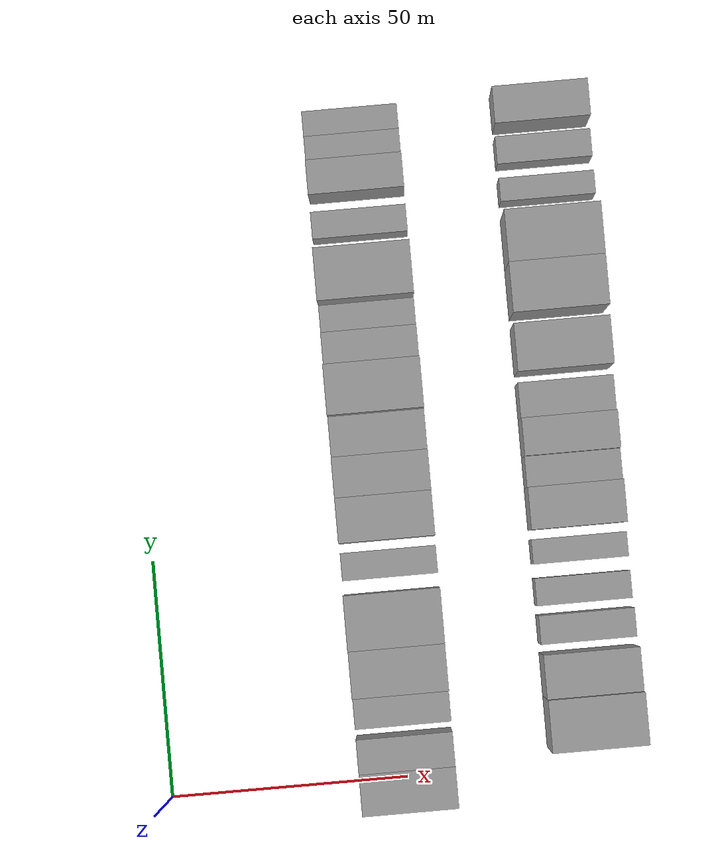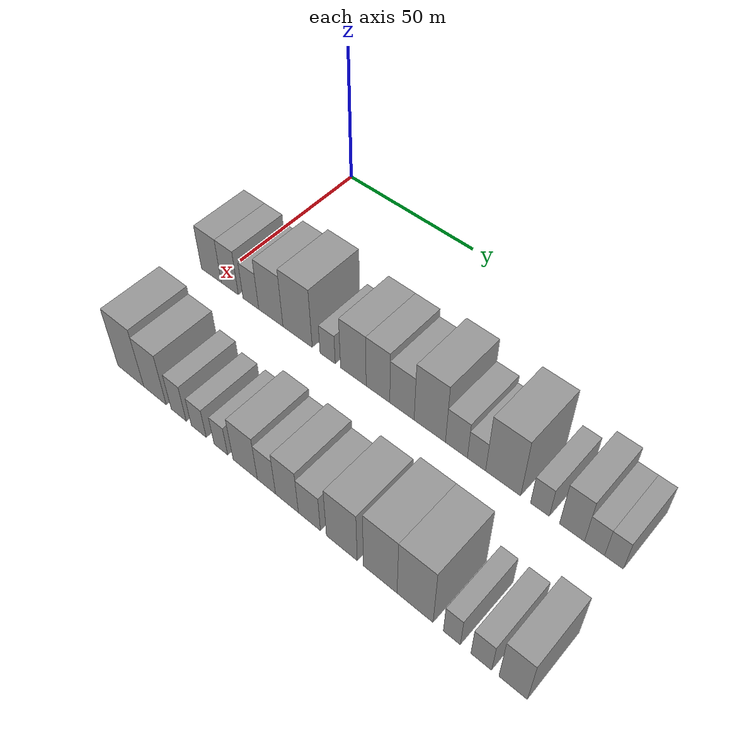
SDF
<sdf version="1.6">
 <world name="default">
  <model name="building_33">
   <static>1</static>
   <pose>50.0000 -1.9753 0 0.000000 0.000000 0.000000</pose>
   <link name="link">
    <pose>0 0 9.00 0 0 0</pose>
    <collision name="collision"><geometry><box><size>20.0000 8.6439 18.0000</size></box></geometry></collision>
    <visual name="visual">
     <cast_shadows>0</cast_shadows>
     <geometry><box><size>20.0000 8.6439 18.0000</size></box></geometry>
     <material>
      <script>
       <uri>model://grey_wall/materials/scripts</uri>
       <uri>model://grey_wall/materials/textures</uri>
       <name>vrc/grey_wall</name>
      </script>
     </material>
    </visual>
   </link>
  </model>
  <model name="building_34">
   <static>1</static>
   <pose>50.0000 5.9675 0 0.000000 0.000000 0.000000</pose>
   <link name="link">
    <pose>0 0 9.00 0 0 0</pose>
    <collision name="collision"><geometry><box><size>20.0000 7.2417 18.0000</size></box></geometry></collision>
    <visual name="visual">
     <cast_shadows>0</cast_shadows>
     <geometry><box><size>20.0000 7.2417 18.0000</size></box></geometry>
     <material>
      <script>
       <uri>model://grey_wall/materials/scripts</uri>
       <uri>model://grey_wall/materials/textures</uri>
       <name>vrc/grey_wall</name>
      </script>
     </material>
    </visual>
   </link>
  </model>
  <model name="building_35">
   <static>1</static>
   <pose>50.0000 14.8578 0 0.000000 0.000000 0.000000</pose>
   <link name="link">
    <pose>0 0 7.50 0 0 0</pose>
    <collision name="collision"><geometry><box><size>20.0000 6.5390 15.0000</size></box></geometry></collision>
    <visual name="visual">
     <cast_shadows>0</cast_shadows>
     <geometry><box><size>20.0000 6.5390 15.0000</size></box></geometry>
     <material>
      <script>
       <uri>model://grey_wall/materials/scripts</uri>
       <uri>model://grey_wall/materials/textures</uri>
       <name>vrc/grey_wall</name>
      </script>
     </material>
    </visual>
   </link>
  </model>
  <model name="building_36">
   <static>1</static>
   <pose>50.0000 23.0570 0 0.000000 0.000000 0.000000</pose>
   <link name="link">
    <pose>0 0 10.50 0 0 0</pose>
    <collision name="collision"><geometry><box><size>20.0000 9.8593 21.0000</size></box></geometry></collision>
    <visual name="visual">
     <cast_shadows>0</cast_shadows>
     <geometry><box><size>20.0000 9.8593 21.0000</size></box></geometry>
     <material>
      <script>
       <uri>model://grey_wall/materials/scripts</uri>
       <uri>model://grey_wall/materials/textures</uri>
       <name>vrc/grey_wall</name>
      </script>
     </material>
    </visual>
   </link>
  </model>
  <model name="building_37">
   <static>1</static>
   <pose>50.0000 33.7391 0 0.000000 0.000000 0.000000</pose>
   <link name="link">
    <pose>0 0 12.00 0 0 0</pose>
    <collision name="collision"><geometry><box><size>20.0000 11.5049 24.0000</size></box></geometry></collision>
    <visual name="visual">
     <cast_shadows>0</cast_shadows>
     <geometry><box><size>20.0000 11.5049 24.0000</size></box></geometry>
     <material>
      <script>
       <uri>model://grey_wall/materials/scripts</uri>
       <uri>model://grey_wall/materials/textures</uri>
       <name>vrc/grey_wall</name>
      </script>
     </material>
    </visual>
   </link>
  </model>
  <model name="building_38">
   <static>1</static>
   <pose>50.0000 45.3837 0 0.000000 0.000000 0.000000</pose>
   <link name="link">
    <pose>0 0 6.00 0 0 0</pose>
    <collision name="collision"><geometry><box><size>20.0000 5.7844 12.0000</size></box></geometry></collision>
    <visual name="visual">
     <cast_shadows>0</cast_shadows>
     <geometry><box><size>20.0000 5.7844 12.0000</size></box></geometry>
     <material>
      <script>
       <uri>model://grey_wall/materials/scripts</uri>
       <uri>model://grey_wall/materials/textures</uri>
       <name>vrc/grey_wall</name>
      </script>
     </material>
    </visual>
   </link>
  </model>
  <model name="building_39">
   <static>1</static>
   <pose>50.0000 54.9895 0 0.000000 0.000000 0.000000</pose>
   <link name="link">
    <pose>0 0 10.50 0 0 0</pose>
    <collision name="collision"><geometry><box><size>20.0000 9.4272 21.0000</size></box></geometry></collision>
    <visual name="visual">
     <cast_shadows>0</cast_shadows>
     <geometry><box><size>20.0000 9.4272 21.0000</size></box></geometry>
     <material>
      <script>
       <uri>model://grey_wall/materials/scripts</uri>
       <uri>model://grey_wall/materials/textures</uri>
       <name>vrc/grey_wall</name>
      </script>
     </material>
    </visual>
   </link>
  </model>
  <model name="building_40">
   <static>1</static>
   <pose>50.0000 63.9344 0 0.000000 0.000000 0.000000</pose>
   <link name="link">
    <pose>0 0 10.50 0 0 0</pose>
    <collision name="collision"><geometry><box><size>20.0000 8.4624 21.0000</size></box></geometry></collision>
    <visual name="visual">
     <cast_shadows>0</cast_shadows>
     <geometry><box><size>20.0000 8.4624 21.0000</size></box></geometry>
     <material>
      <script>
       <uri>model://grey_wall/materials/scripts</uri>
       <uri>model://grey_wall/materials/textures</uri>
       <name>vrc/grey_wall</name>
      </script>
     </material>
    </visual>
   </link>
  </model>
  <model name="building_41">
   <static>1</static>
   <pose>50.0000 72.4222 0 0.000000 0.000000 0.000000</pose>
   <link name="link">
    <pose>0 0 9.00 0 0 0</pose>
    <collision name="collision"><geometry><box><size>20.0000 8.5133 18.0000</size></box></geometry></collision>
    <visual name="visual">
     <cast_shadows>0</cast_shadows>
     <geometry><box><size>20.0000 8.5133 18.0000</size></box></geometry>
     <material>
      <script>
       <uri>model://grey_wall/materials/scripts</uri>
       <uri>model://grey_wall/materials/textures</uri>
       <name>vrc/grey_wall</name>
      </script>
     </material>
    </visual>
   </link>
  </model>
  <model name="building_42">
   <static>1</static>
   <pose>50.0000 81.9835 0 0.000000 0.000000 0.000000</pose>
   <link name="link">
    <pose>0 0 12.00 0 0 0</pose>
    <collision name="collision"><geometry><box><size>20.0000 10.6092 24.0000</size></box></geometry></collision>
    <visual name="visual">
     <cast_shadows>0</cast_shadows>
     <geometry><box><size>20.0000 10.6092 24.0000</size></box></geometry>
     <material>
      <script>
       <uri>model://grey_wall/materials/scripts</uri>
       <uri>model://grey_wall/materials/textures</uri>
       <name>vrc/grey_wall</name>
      </script>
     </material>
    </visual>
   </link>
  </model>
  <model name="building_43">
   <static>1</static>
   <pose>50.0000 90.8949 0 0.000000 0.000000 0.000000</pose>
   <link name="link">
    <pose>0 0 7.50 0 0 0</pose>
    <collision name="collision"><geometry><box><size>20.0000 7.2136 15.0000</size></box></geometry></collision>
    <visual name="visual">
     <cast_shadows>0</cast_shadows>
     <geometry><box><size>20.0000 7.2136 15.0000</size></box></geometry>
     <material>
      <script>
       <uri>model://grey_wall/materials/scripts</uri>
       <uri>model://grey_wall/materials/textures</uri>
       <name>vrc/grey_wall</name>
      </script>
     </material>
    </visual>
   </link>
  </model>
  <model name="building_44">
   <static>1</static>
   <pose>50.0000 97.4347 0 0.000000 0.000000 0.000000</pose>
   <link name="link">
    <pose>0 0 6.00 0 0 0</pose>
    <collision name="collision"><geometry><box><size>20.0000 5.8660 12.0000</size></box></geometry></collision>
    <visual name="visual">
     <cast_shadows>0</cast_shadows>
     <geometry><box><size>20.0000 5.8660 12.0000</size></box></geometry>
     <material>
      <script>
       <uri>model://grey_wall/materials/scripts</uri>
       <uri>model://grey_wall/materials/textures</uri>
       <name>vrc/grey_wall</name>
      </script>
     </material>
    </visual>
   </link>
  </model>
  <model name="building_45">
   <static>1</static>
   <pose>50.0000 105.8738 0 0.000000 0.000000 0.000000</pose>
   <link name="link">
    <pose>0 0 12.00 0 0 0</pose>
    <collision name="collision"><geometry><box><size>20.0000 11.0121 24.0000</size></box></geometry></collision>
    <visual name="visual">
     <cast_shadows>0</cast_shadows>
     <geometry><box><size>20.0000 11.0121 24.0000</size></box></geometry>
     <material>
      <script>
       <uri>model://grey_wall/materials/scripts</uri>
       <uri>model://grey_wall/materials/textures</uri>
       <name>vrc/grey_wall</name>
      </script>
     </material>
    </visual>
   </link>
  </model>
  <model name="building_46">
   <static>1</static>
   <pose>50.0000 117.2272 0 0.000000 0.000000 0.000000</pose>
   <link name="link">
    <pose>0 0 6.00 0 0 0</pose>
    <collision name="collision"><geometry><box><size>20.0000 5.6948 12.0000</size></box></geometry></collision>
    <visual name="visual">
     <cast_shadows>0</cast_shadows>
     <geometry><box><size>20.0000 5.6948 12.0000</size></box></geometry>
     <material>
      <script>
       <uri>model://grey_wall/materials/scripts</uri>
       <uri>model://grey_wall/materials/textures</uri>
       <name>vrc/grey_wall</name>
      </script>
     </material>
    </visual>
   </link>
  </model>
  <model name="building_47">
   <static>1</static>
   <pose>50.0000 126.7138 0 0.000000 0.000000 0.000000</pose>
   <link name="link">
    <pose>0 0 9.00 0 0 0</pose>
    <collision name="collision"><geometry><box><size>20.0000 7.2783 18.0000</size></box></geometry></collision>
    <visual name="visual">
     <cast_shadows>0</cast_shadows>
     <geometry><box><size>20.0000 7.2783 18.0000</size></box></geometry>
     <material>
      <script>
       <uri>model://grey_wall/materials/scripts</uri>
       <uri>model://grey_wall/materials/textures</uri>
       <name>vrc/grey_wall</name>
      </script>
     </material>
    </visual>
   </link>
  </model>
  <model name="building_48">
   <static>1</static>
   <pose>50.0000 133.2142 0 0.000000 0.000000 0.000000</pose>
   <link name="link">
    <pose>0 0 6.00 0 0 0</pose>
    <collision name="collision"><geometry><box><size>20.0000 5.7225 12.0000</size></box></geometry></collision>
    <visual name="visual">
     <cast_shadows>0</cast_shadows>
     <geometry><box><size>20.0000 5.7225 12.0000</size></box></geometry>
     <material>
      <script>
       <uri>model://grey_wall/materials/scripts</uri>
       <uri>model://grey_wall/materials/textures</uri>
       <name>vrc/grey_wall</name>
      </script>
     </material>
    </visual>
   </link>
  </model>
  <model name="building_49">
   <static>1</static>
   <pose>50.0000 138.7102 0 0.000000 0.000000 0.000000</pose>
   <link name="link">
    <pose>0 0 6.00 0 0 0</pose>
    <collision name="collision"><geometry><box><size>20.0000 5.2697 12.0000</size></box></geometry></collision>
    <visual name="visual">
     <cast_shadows>0</cast_shadows>
     <geometry><box><size>20.0000 5.2697 12.0000</size></box></geometry>
     <material>
      <script>
       <uri>model://grey_wall/materials/scripts</uri>
       <uri>model://grey_wall/materials/textures</uri>
       <name>vrc/grey_wall</name>
      </script>
     </material>
    </visual>
   </link>
  </model>
  <model name="building_97">
   <static>1</static>
   <pose>90.0000 9.0824 0 0.000000 0.000000 0.000000</pose>
   <link name="link">
    <pose>0 0 12.00 0 0 0</pose>
    <collision name="collision"><geometry><box><size>20.0000 10.9043 24.0000</size></box></geometry></collision>
    <visual name="visual">
     <cast_shadows>0</cast_shadows>
     <geometry><box><size>20.0000 10.9043 24.0000</size></box></geometry>
     <material>
      <script>
       <uri>model://grey_wall/materials/scripts</uri>
       <uri>model://grey_wall/materials/textures</uri>
       <name>vrc/grey_wall</name>
      </script>
     </material>
    </visual>
   </link>
  </model>
  <model name="building_98">
   <static>1</static>
   <pose>90.0000 19.1319 0 0.000000 0.000000 0.000000</pose>
   <link name="link">
    <pose>0 0 10.50 0 0 0</pose>
    <collision name="collision"><geometry><box><size>20.0000 9.1947 21.0000</size></box></geometry></collision>
    <visual name="visual">
     <cast_shadows>0</cast_shadows>
     <geometry><box><size>20.0000 9.1947 21.0000</size></box></geometry>
     <material>
      <script>
       <uri>model://grey_wall/materials/scripts</uri>
       <uri>model://grey_wall/materials/textures</uri>
       <name>vrc/grey_wall</name>
      </script>
     </material>
    </visual>
   </link>
  </model>
  <model name="building_99">
   <static>1</static>
   <pose>90.0000 28.7344 0 0.000000 0.000000 0.000000</pose>
   <link name="link">
    <pose>0 0 7.50 0 0 0</pose>
    <collision name="collision"><geometry><box><size>20.0000 6.0102 15.0000</size></box></geometry></collision>
    <visual name="visual">
     <cast_shadows>0</cast_shadows>
     <geometry><box><size>20.0000 6.0102 15.0000</size></box></geometry>
     <material>
      <script>
       <uri>model://grey_wall/materials/scripts</uri>
       <uri>model://grey_wall/materials/textures</uri>
       <name>vrc/grey_wall</name>
      </script>
     </material>
    </visual>
   </link>
  </model>
  <model name="building_100">
   <static>1</static>
   <pose>90.0000 36.6104 0 0.000000 0.000000 0.000000</pose>
   <link name="link">
    <pose>0 0 6.00 0 0 0</pose>
    <collision name="collision"><geometry><box><size>20.0000 5.7419 12.0000</size></box></geometry></collision>
    <visual name="visual">
     <cast_shadows>0</cast_shadows>
     <geometry><box><size>20.0000 5.7419 12.0000</size></box></geometry>
     <material>
      <script>
       <uri>model://grey_wall/materials/scripts</uri>
       <uri>model://grey_wall/materials/textures</uri>
       <name>vrc/grey_wall</name>
      </script>
     </material>
    </visual>
   </link>
  </model>
  <model name="building_101">
   <static>1</static>
   <pose>90.0000 45.0587 0 0.000000 0.000000 0.000000</pose>
   <link name="link">
    <pose>0 0 6.00 0 0 0</pose>
    <collision name="collision"><geometry><box><size>20.0000 5.1548 12.0000</size></box></geometry></collision>
    <visual name="visual">
     <cast_shadows>0</cast_shadows>
     <geometry><box><size>20.0000 5.1548 12.0000</size></box></geometry>
     <material>
      <script>
       <uri>model://grey_wall/materials/scripts</uri>
       <uri>model://grey_wall/materials/textures</uri>
       <name>vrc/grey_wall</name>
      </script>
     </material>
    </visual>
   </link>
  </model>
  <model name="building_102">
   <static>1</static>
   <pose>90.0000 54.0818 0 0.000000 0.000000 0.000000</pose>
   <link name="link">
    <pose>0 0 9.00 0 0 0</pose>
    <collision name="collision"><geometry><box><size>20.0000 8.8914 18.0000</size></box></geometry></collision>
    <visual name="visual">
     <cast_shadows>0</cast_shadows>
     <geometry><box><size>20.0000 8.8914 18.0000</size></box></geometry>
     <material>
      <script>
       <uri>model://grey_wall/materials/scripts</uri>
       <uri>model://grey_wall/materials/textures</uri>
       <name>vrc/grey_wall</name>
      </script>
     </material>
    </visual>
   </link>
  </model>
  <model name="building_103">
   <static>1</static>
   <pose>90.0000 61.7717 0 0.000000 0.000000 0.000000</pose>
   <link name="link">
    <pose>0 0 7.50 0 0 0</pose>
    <collision name="collision"><geometry><box><size>20.0000 6.4884 15.0000</size></box></geometry></collision>
    <visual name="visual">
     <cast_shadows>0</cast_shadows>
     <geometry><box><size>20.0000 6.4884 15.0000</size></box></geometry>
     <material>
      <script>
       <uri>model://grey_wall/materials/scripts</uri>
       <uri>model://grey_wall/materials/textures</uri>
       <name>vrc/grey_wall</name>
      </script>
     </material>
    </visual>
   </link>
  </model>
  <model name="building_104">
   <static>1</static>
   <pose>90.0000 68.9917 0 0.000000 0.000000 0.000000</pose>
   <link name="link">
    <pose>0 0 9.00 0 0 0</pose>
    <collision name="collision"><geometry><box><size>20.0000 7.9517 18.0000</size></box></geometry></collision>
    <visual name="visual">
     <cast_shadows>0</cast_shadows>
     <geometry><box><size>20.0000 7.9517 18.0000</size></box></geometry>
     <material>
      <script>
       <uri>model://grey_wall/materials/scripts</uri>
       <uri>model://grey_wall/materials/textures</uri>
       <name>vrc/grey_wall</name>
      </script>
     </material>
    </visual>
   </link>
  </model>
  <model name="building_105">
   <static>1</static>
   <pose>90.0000 76.6968 0 0.000000 0.000000 0.000000</pose>
   <link name="link">
    <pose>0 0 7.50 0 0 0</pose>
    <collision name="collision"><geometry><box><size>20.0000 7.4584 15.0000</size></box></geometry></collision>
    <visual name="visual">
     <cast_shadows>0</cast_shadows>
     <geometry><box><size>20.0000 7.4584 15.0000</size></box></geometry>
     <material>
      <script>
       <uri>model://grey_wall/materials/scripts</uri>
       <uri>model://grey_wall/materials/textures</uri>
       <name>vrc/grey_wall</name>
      </script>
     </material>
    </visual>
   </link>
  </model>
  <model name="building_106">
   <static>1</static>
   <pose>90.0000 87.4504 0 0.000000 0.000000 0.000000</pose>
   <link name="link">
    <pose>0 0 10.50 0 0 0</pose>
    <collision name="collision"><geometry><box><size>20.0000 10.0489 21.0000</size></box></geometry></collision>
    <visual name="visual">
     <cast_shadows>0</cast_shadows>
     <geometry><box><size>20.0000 10.0489 21.0000</size></box></geometry>
     <material>
      <script>
       <uri>model://grey_wall/materials/scripts</uri>
       <uri>model://grey_wall/materials/textures</uri>
       <name>vrc/grey_wall</name>
      </script>
     </material>
    </visual>
   </link>
  </model>
  <model name="building_107">
   <static>1</static>
   <pose>90.0000 99.7210 0 0.000000 0.000000 0.000000</pose>
   <link name="link">
    <pose>0 0 12.00 0 0 0</pose>
    <collision name="collision"><geometry><box><size>20.0000 10.4923 24.0000</size></box></geometry></collision>
    <visual name="visual">
     <cast_shadows>0</cast_shadows>
     <geometry><box><size>20.0000 10.4923 24.0000</size></box></geometry>
     <material>
      <script>
       <uri>model://grey_wall/materials/scripts</uri>
       <uri>model://grey_wall/materials/textures</uri>
       <name>vrc/grey_wall</name>
      </script>
     </material>
    </visual>
   </link>
  </model>
  <model name="building_108">
   <static>1</static>
   <pose>90.0000 110.3941 0 0.000000 0.000000 0.000000</pose>
   <link name="link">
    <pose>0 0 12.00 0 0 0</pose>
    <collision name="collision"><geometry><box><size>20.0000 10.8539 24.0000</size></box></geometry></collision>
    <visual name="visual">
     <cast_shadows>0</cast_shadows>
     <geometry><box><size>20.0000 10.8539 24.0000</size></box></geometry>
     <material>
      <script>
       <uri>model://grey_wall/materials/scripts</uri>
       <uri>model://grey_wall/materials/textures</uri>
       <name>vrc/grey_wall</name>
      </script>
     </material>
    </visual>
   </link>
  </model>
  <model name="building_109">
   <static>1</static>
   <pose>90.0000 121.2791 0 0.000000 0.000000 0.000000</pose>
   <link name="link">
    <pose>0 0 6.00 0 0 0</pose>
    <collision name="collision"><geometry><box><size>20.0000 4.9161 12.0000</size></box></geometry></collision>
    <visual name="visual">
     <cast_shadows>0</cast_shadows>
     <geometry><box><size>20.0000 4.9161 12.0000</size></box></geometry>
     <material>
      <script>
       <uri>model://grey_wall/materials/scripts</uri>
       <uri>model://grey_wall/materials/textures</uri>
       <name>vrc/grey_wall</name>
      </script>
     </material>
    </visual>
   </link>
  </model>
  <model name="building_110">
   <static>1</static>
   <pose>90.0000 129.6373 0 0.000000 0.000000 0.000000</pose>
   <link name="link">
    <pose>0 0 6.00 0 0 0</pose>
    <collision name="collision"><geometry><box><size>20.0000 5.8004 12.0000</size></box></geometry></collision>
    <visual name="visual">
     <cast_shadows>0</cast_shadows>
     <geometry><box><size>20.0000 5.8004 12.0000</size></box></geometry>
     <material>
      <script>
       <uri>model://grey_wall/materials/scripts</uri>
       <uri>model://grey_wall/materials/textures</uri>
       <name>vrc/grey_wall</name>
      </script>
     </material>
    </visual>
   </link>
  </model>
  <model name="building_111">
   <static>1</static>
   <pose>90.0000 138.4008 0 0.000000 0.000000 0.000000</pose>
   <link name="link">
    <pose>0 0 9.00 0 0 0</pose>
    <collision name="collision"><geometry><box><size>20.0000 7.7266 18.0000</size></box></geometry></collision>
    <visual name="visual">
     <cast_shadows>0</cast_shadows>
     <geometry><box><size>20.0000 7.7266 18.0000</size></box></geometry>
     <material>
      <script>
       <uri>model://grey_wall/materials/scripts</uri>
       <uri>model://grey_wall/materials/textures</uri>
       <name>vrc/grey_wall</name>
      </script>
     </material>
    </visual>
   </link>
  </model>
 </world>
</sdf>
